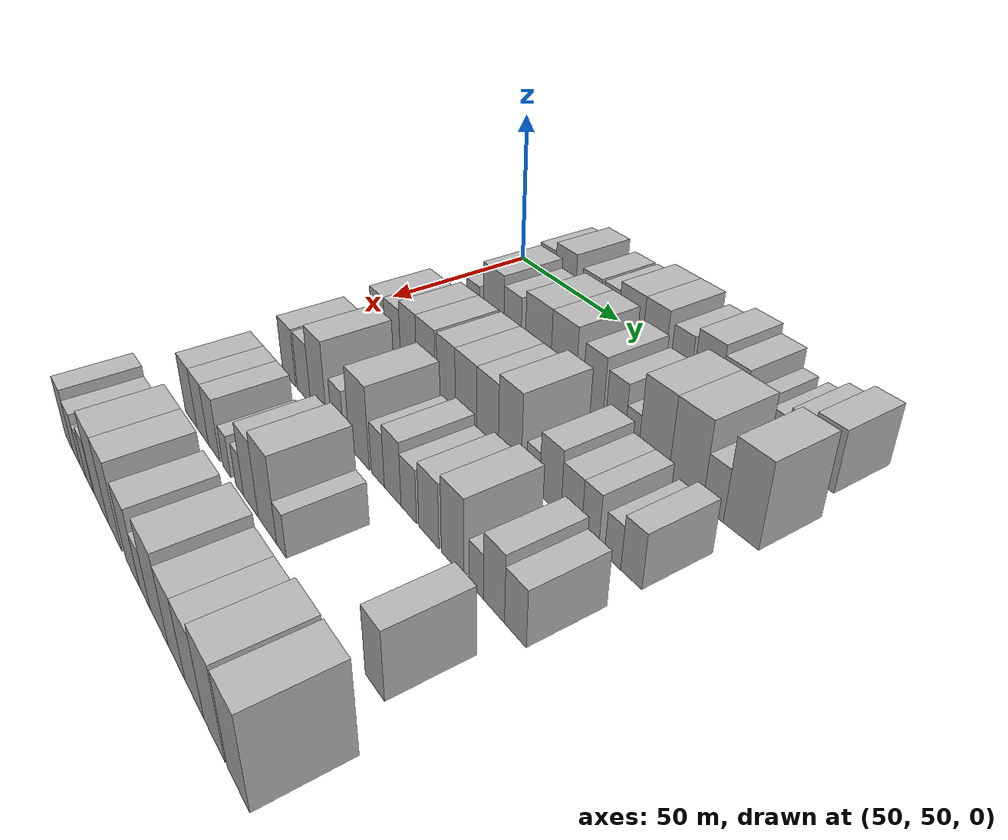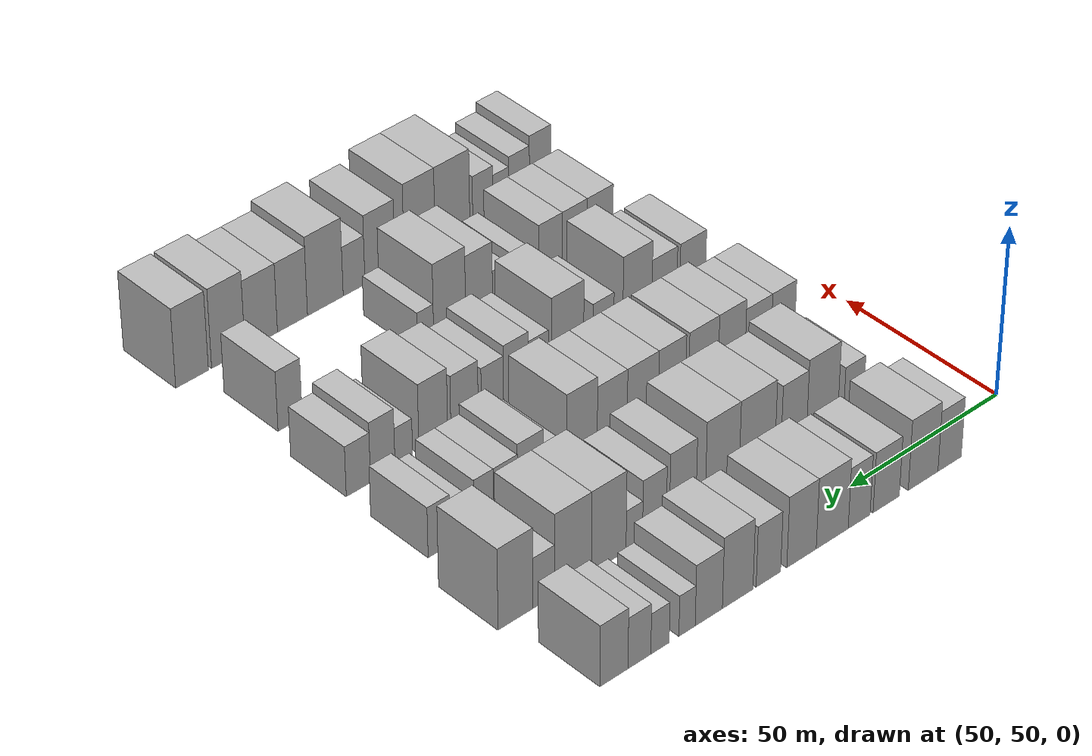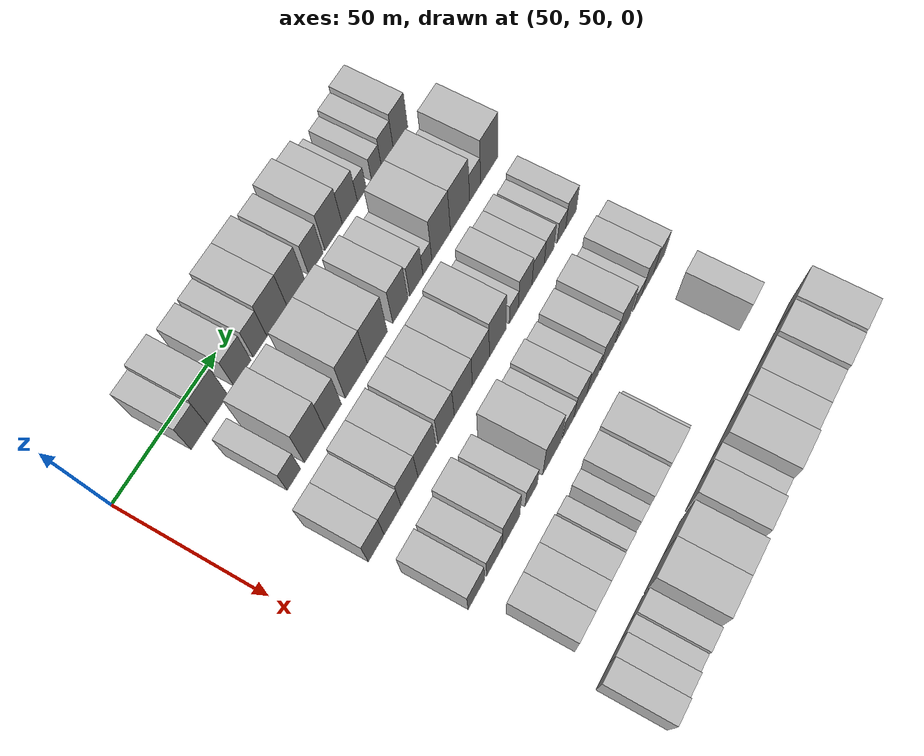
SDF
<sdf version="1.6">
 <world name="default">
  <model name="building_60">
   <static>1</static>
   <pose>50.0000 77.0661 0 0.000000 0.000000 0.000000</pose>
   <link name="link">
    <pose>0 0 9.00 0 0 0</pose>
    <collision name="collision"><geometry><box><size>20.0000 7.9221 18.0000</size></box></geometry></collision>
    <visual name="visual">
     <cast_shadows>0</cast_shadows>
     <geometry><box><size>20.0000 7.9221 18.0000</size></box></geometry>
     <material>
      <script>
       <uri>model://HANNAS_wall/materials/scripts</uri>
       <uri>model://HANNAS_wall/materials/textures</uri>
       <name>vrc/HANNAS_wall</name>
      </script>
     </material>
    </visual>
   </link>
  </model>
  <model name="building_61">
   <static>1</static>
   <pose>50.0000 86.0350 0 0.000000 0.000000 0.000000</pose>
   <link name="link">
    <pose>0 0 10.50 0 0 0</pose>
    <collision name="collision"><geometry><box><size>20.0000 10.0156 21.0000</size></box></geometry></collision>
    <visual name="visual">
     <cast_shadows>0</cast_shadows>
     <geometry><box><size>20.0000 10.0156 21.0000</size></box></geometry>
     <material>
      <script>
       <uri>model://HANNAS_wall/materials/scripts</uri>
       <uri>model://HANNAS_wall/materials/textures</uri>
       <name>vrc/HANNAS_wall</name>
      </script>
     </material>
    </visual>
   </link>
  </model>
  <model name="building_62">
   <static>1</static>
   <pose>50.0000 98.4166 0 0.000000 0.000000 0.000000</pose>
   <link name="link">
    <pose>0 0 9.00 0 0 0</pose>
    <collision name="collision"><geometry><box><size>20.0000 8.7476 18.0000</size></box></geometry></collision>
    <visual name="visual">
     <cast_shadows>0</cast_shadows>
     <geometry><box><size>20.0000 8.7476 18.0000</size></box></geometry>
     <material>
      <script>
       <uri>model://HANNAS_wall/materials/scripts</uri>
       <uri>model://HANNAS_wall/materials/textures</uri>
       <name>vrc/HANNAS_wall</name>
      </script>
     </material>
    </visual>
   </link>
  </model>
  <model name="building_63">
   <static>1</static>
   <pose>50.0000 107.3916 0 0.000000 0.000000 0.000000</pose>
   <link name="link">
    <pose>0 0 9.00 0 0 0</pose>
    <collision name="collision"><geometry><box><size>20.0000 7.2025 18.0000</size></box></geometry></collision>
    <visual name="visual">
     <cast_shadows>0</cast_shadows>
     <geometry><box><size>20.0000 7.2025 18.0000</size></box></geometry>
     <material>
      <script>
       <uri>model://HANNAS_wall/materials/scripts</uri>
       <uri>model://HANNAS_wall/materials/textures</uri>
       <name>vrc/HANNAS_wall</name>
      </script>
     </material>
    </visual>
   </link>
  </model>
  <model name="building_64">
   <static>1</static>
   <pose>50.0000 116.2311 0 0.000000 0.000000 0.000000</pose>
   <link name="link">
    <pose>0 0 10.50 0 0 0</pose>
    <collision name="collision"><geometry><box><size>20.0000 10.4764 21.0000</size></box></geometry></collision>
    <visual name="visual">
     <cast_shadows>0</cast_shadows>
     <geometry><box><size>20.0000 10.4764 21.0000</size></box></geometry>
     <material>
      <script>
       <uri>model://HANNAS_wall/materials/scripts</uri>
       <uri>model://HANNAS_wall/materials/textures</uri>
       <name>vrc/HANNAS_wall</name>
      </script>
     </material>
    </visual>
   </link>
  </model>
  <model name="building_65">
   <static>1</static>
   <pose>50.0000 126.2263 0 0.000000 0.000000 0.000000</pose>
   <link name="link">
    <pose>0 0 10.50 0 0 0</pose>
    <collision name="collision"><geometry><box><size>20.0000 9.5140 21.0000</size></box></geometry></collision>
    <visual name="visual">
     <cast_shadows>0</cast_shadows>
     <geometry><box><size>20.0000 9.5140 21.0000</size></box></geometry>
     <material>
      <script>
       <uri>model://HANNAS_wall/materials/scripts</uri>
       <uri>model://HANNAS_wall/materials/textures</uri>
       <name>vrc/HANNAS_wall</name>
      </script>
     </material>
    </visual>
   </link>
  </model>
  <model name="building_66">
   <static>1</static>
   <pose>50.0000 136.9026 0 0.000000 0.000000 0.000000</pose>
   <link name="link">
    <pose>0 0 9.00 0 0 0</pose>
    <collision name="collision"><geometry><box><size>20.0000 7.8386 18.0000</size></box></geometry></collision>
    <visual name="visual">
     <cast_shadows>0</cast_shadows>
     <geometry><box><size>20.0000 7.8386 18.0000</size></box></geometry>
     <material>
      <script>
       <uri>model://HANNAS_wall/materials/scripts</uri>
       <uri>model://HANNAS_wall/materials/textures</uri>
       <name>vrc/HANNAS_wall</name>
      </script>
     </material>
    </visual>
   </link>
  </model>
  <model name="building_67">
   <static>1</static>
   <pose>50.0000 146.6711 0 0.000000 0.000000 0.000000</pose>
   <link name="link">
    <pose>0 0 10.50 0 0 0</pose>
    <collision name="collision"><geometry><box><size>20.0000 9.6983 21.0000</size></box></geometry></collision>
    <visual name="visual">
     <cast_shadows>0</cast_shadows>
     <geometry><box><size>20.0000 9.6983 21.0000</size></box></geometry>
     <material>
      <script>
       <uri>model://HANNAS_wall/materials/scripts</uri>
       <uri>model://HANNAS_wall/materials/textures</uri>
       <name>vrc/HANNAS_wall</name>
      </script>
     </material>
    </visual>
   </link>
  </model>
  <model name="building_68">
   <static>1</static>
   <pose>50.0000 155.7852 0 0.000000 0.000000 0.000000</pose>
   <link name="link">
    <pose>0 0 9.00 0 0 0</pose>
    <collision name="collision"><geometry><box><size>20.0000 8.5299 18.0000</size></box></geometry></collision>
    <visual name="visual">
     <cast_shadows>0</cast_shadows>
     <geometry><box><size>20.0000 8.5299 18.0000</size></box></geometry>
     <material>
      <script>
       <uri>model://HANNAS_wall/materials/scripts</uri>
       <uri>model://HANNAS_wall/materials/textures</uri>
       <name>vrc/HANNAS_wall</name>
      </script>
     </material>
    </visual>
   </link>
  </model>
  <model name="building_69">
   <static>1</static>
   <pose>50.0000 162.5838 0 0.000000 0.000000 0.000000</pose>
   <link name="link">
    <pose>0 0 6.00 0 0 0</pose>
    <collision name="collision"><geometry><box><size>20.0000 5.0674 12.0000</size></box></geometry></collision>
    <visual name="visual">
     <cast_shadows>0</cast_shadows>
     <geometry><box><size>20.0000 5.0674 12.0000</size></box></geometry>
     <material>
      <script>
       <uri>model://HANNAS_wall/materials/scripts</uri>
       <uri>model://HANNAS_wall/materials/textures</uri>
       <name>vrc/HANNAS_wall</name>
      </script>
     </material>
    </visual>
   </link>
  </model>
  <model name="building_70">
   <static>1</static>
   <pose>50.0000 170.9554 0 0.000000 0.000000 0.000000</pose>
   <link name="link">
    <pose>0 0 6.00 0 0 0</pose>
    <collision name="collision"><geometry><box><size>20.0000 5.6758 12.0000</size></box></geometry></collision>
    <visual name="visual">
     <cast_shadows>0</cast_shadows>
     <geometry><box><size>20.0000 5.6758 12.0000</size></box></geometry>
     <material>
      <script>
       <uri>model://HANNAS_wall/materials/scripts</uri>
       <uri>model://HANNAS_wall/materials/textures</uri>
       <name>vrc/HANNAS_wall</name>
      </script>
     </material>
    </visual>
   </link>
  </model>
  <model name="building_71">
   <static>1</static>
   <pose>50.0000 177.2953 0 0.000000 0.000000 0.000000</pose>
   <link name="link">
    <pose>0 0 7.50 0 0 0</pose>
    <collision name="collision"><geometry><box><size>20.0000 7.0041 15.0000</size></box></geometry></collision>
    <visual name="visual">
     <cast_shadows>0</cast_shadows>
     <geometry><box><size>20.0000 7.0041 15.0000</size></box></geometry>
     <material>
      <script>
       <uri>model://HANNAS_wall/materials/scripts</uri>
       <uri>model://HANNAS_wall/materials/textures</uri>
       <name>vrc/HANNAS_wall</name>
      </script>
     </material>
    </visual>
   </link>
  </model>
  <model name="building_72">
   <static>1</static>
   <pose>50.0000 185.0707 0 0.000000 0.000000 0.000000</pose>
   <link name="link">
    <pose>0 0 9.00 0 0 0</pose>
    <collision name="collision"><geometry><box><size>20.0000 8.5465 18.0000</size></box></geometry></collision>
    <visual name="visual">
     <cast_shadows>0</cast_shadows>
     <geometry><box><size>20.0000 8.5465 18.0000</size></box></geometry>
     <material>
      <script>
       <uri>model://HANNAS_wall/materials/scripts</uri>
       <uri>model://HANNAS_wall/materials/textures</uri>
       <name>vrc/HANNAS_wall</name>
      </script>
     </material>
    </visual>
   </link>
  </model>
  <model name="building_172">
   <static>1</static>
   <pose>79.0000 79.4895 0 0.000000 0.000000 0.000000</pose>
   <link name="link">
    <pose>0 0 7.50 0 0 0</pose>
    <collision name="collision"><geometry><box><size>20.0000 6.7395 15.0000</size></box></geometry></collision>
    <visual name="visual">
     <cast_shadows>0</cast_shadows>
     <geometry><box><size>20.0000 6.7395 15.0000</size></box></geometry>
     <material>
      <script>
       <uri>model://HANNAS_wall/materials/scripts</uri>
       <uri>model://HANNAS_wall/materials/textures</uri>
       <name>vrc/HANNAS_wall</name>
      </script>
     </material>
    </visual>
   </link>
  </model>
  <model name="building_173">
   <static>1</static>
   <pose>79.0000 90.1272 0 0.000000 0.000000 0.000000</pose>
   <link name="link">
    <pose>0 0 12.00 0 0 0</pose>
    <collision name="collision"><geometry><box><size>20.0000 10.5358 24.0000</size></box></geometry></collision>
    <visual name="visual">
     <cast_shadows>0</cast_shadows>
     <geometry><box><size>20.0000 10.5358 24.0000</size></box></geometry>
     <material>
      <script>
       <uri>model://HANNAS_wall/materials/scripts</uri>
       <uri>model://HANNAS_wall/materials/textures</uri>
       <name>vrc/HANNAS_wall</name>
      </script>
     </material>
    </visual>
   </link>
  </model>
  <model name="building_174">
   <static>1</static>
   <pose>79.0000 99.6537 0 0.000000 0.000000 0.000000</pose>
   <link name="link">
    <pose>0 0 10.50 0 0 0</pose>
    <collision name="collision"><geometry><box><size>20.0000 8.5172 21.0000</size></box></geometry></collision>
    <visual name="visual">
     <cast_shadows>0</cast_shadows>
     <geometry><box><size>20.0000 8.5172 21.0000</size></box></geometry>
     <material>
      <script>
       <uri>model://HANNAS_wall/materials/scripts</uri>
       <uri>model://HANNAS_wall/materials/textures</uri>
       <name>vrc/HANNAS_wall</name>
      </script>
     </material>
    </visual>
   </link>
  </model>
  <model name="building_175">
   <static>1</static>
   <pose>79.0000 111.7917 0 0.000000 0.000000 0.000000</pose>
   <link name="link">
    <pose>0 0 12.00 0 0 0</pose>
    <collision name="collision"><geometry><box><size>20.0000 11.7587 24.0000</size></box></geometry></collision>
    <visual name="visual">
     <cast_shadows>0</cast_shadows>
     <geometry><box><size>20.0000 11.7587 24.0000</size></box></geometry>
     <material>
      <script>
       <uri>model://HANNAS_wall/materials/scripts</uri>
       <uri>model://HANNAS_wall/materials/textures</uri>
       <name>vrc/HANNAS_wall</name>
      </script>
     </material>
    </visual>
   </link>
  </model>
  <model name="building_176">
   <static>1</static>
   <pose>79.0000 123.1472 0 0.000000 0.000000 0.000000</pose>
   <link name="link">
    <pose>0 0 12.00 0 0 0</pose>
    <collision name="collision"><geometry><box><size>20.0000 10.9523 24.0000</size></box></geometry></collision>
    <visual name="visual">
     <cast_shadows>0</cast_shadows>
     <geometry><box><size>20.0000 10.9523 24.0000</size></box></geometry>
     <material>
      <script>
       <uri>model://HANNAS_wall/materials/scripts</uri>
       <uri>model://HANNAS_wall/materials/textures</uri>
       <name>vrc/HANNAS_wall</name>
      </script>
     </material>
    </visual>
   </link>
  </model>
  <model name="building_177">
   <static>1</static>
   <pose>79.0000 135.8854 0 0.000000 0.000000 0.000000</pose>
   <link name="link">
    <pose>0 0 10.50 0 0 0</pose>
    <collision name="collision"><geometry><box><size>20.0000 8.5241 21.0000</size></box></geometry></collision>
    <visual name="visual">
     <cast_shadows>0</cast_shadows>
     <geometry><box><size>20.0000 8.5241 21.0000</size></box></geometry>
     <material>
      <script>
       <uri>model://HANNAS_wall/materials/scripts</uri>
       <uri>model://HANNAS_wall/materials/textures</uri>
       <name>vrc/HANNAS_wall</name>
      </script>
     </material>
    </visual>
   </link>
  </model>
  <model name="building_178">
   <static>1</static>
   <pose>79.0000 144.9163 0 0.000000 0.000000 0.000000</pose>
   <link name="link">
    <pose>0 0 9.00 0 0 0</pose>
    <collision name="collision"><geometry><box><size>20.0000 7.5376 18.0000</size></box></geometry></collision>
    <visual name="visual">
     <cast_shadows>0</cast_shadows>
     <geometry><box><size>20.0000 7.5376 18.0000</size></box></geometry>
     <material>
      <script>
       <uri>model://HANNAS_wall/materials/scripts</uri>
       <uri>model://HANNAS_wall/materials/textures</uri>
       <name>vrc/HANNAS_wall</name>
      </script>
     </material>
    </visual>
   </link>
  </model>
  <model name="building_179">
   <static>1</static>
   <pose>79.0000 151.2828 0 0.000000 0.000000 0.000000</pose>
   <link name="link">
    <pose>0 0 6.00 0 0 0</pose>
    <collision name="collision"><geometry><box><size>20.0000 5.1955 12.0000</size></box></geometry></collision>
    <visual name="visual">
     <cast_shadows>0</cast_shadows>
     <geometry><box><size>20.0000 5.1955 12.0000</size></box></geometry>
     <material>
      <script>
       <uri>model://HANNAS_wall/materials/scripts</uri>
       <uri>model://HANNAS_wall/materials/textures</uri>
       <name>vrc/HANNAS_wall</name>
      </script>
     </material>
    </visual>
   </link>
  </model>
  <model name="building_180">
   <static>1</static>
   <pose>79.0000 159.2935 0 0.000000 0.000000 0.000000</pose>
   <link name="link">
    <pose>0 0 12.00 0 0 0</pose>
    <collision name="collision"><geometry><box><size>20.0000 10.8259 24.0000</size></box></geometry></collision>
    <visual name="visual">
     <cast_shadows>0</cast_shadows>
     <geometry><box><size>20.0000 10.8259 24.0000</size></box></geometry>
     <material>
      <script>
       <uri>model://HANNAS_wall/materials/scripts</uri>
       <uri>model://HANNAS_wall/materials/textures</uri>
       <name>vrc/HANNAS_wall</name>
      </script>
     </material>
    </visual>
   </link>
  </model>
  <model name="building_181">
   <static>1</static>
   <pose>79.0000 170.4123 0 0.000000 0.000000 0.000000</pose>
   <link name="link">
    <pose>0 0 12.00 0 0 0</pose>
    <collision name="collision"><geometry><box><size>20.0000 11.4117 24.0000</size></box></geometry></collision>
    <visual name="visual">
     <cast_shadows>0</cast_shadows>
     <geometry><box><size>20.0000 11.4117 24.0000</size></box></geometry>
     <material>
      <script>
       <uri>model://HANNAS_wall/materials/scripts</uri>
       <uri>model://HANNAS_wall/materials/textures</uri>
       <name>vrc/HANNAS_wall</name>
      </script>
     </material>
    </visual>
   </link>
  </model>
  <model name="building_182">
   <static>1</static>
   <pose>79.0000 179.4319 0 0.000000 0.000000 0.000000</pose>
   <link name="link">
    <pose>0 0 7.50 0 0 0</pose>
    <collision name="collision"><geometry><box><size>20.0000 6.6274 15.0000</size></box></geometry></collision>
    <visual name="visual">
     <cast_shadows>0</cast_shadows>
     <geometry><box><size>20.0000 6.6274 15.0000</size></box></geometry>
     <material>
      <script>
       <uri>model://HANNAS_wall/materials/scripts</uri>
       <uri>model://HANNAS_wall/materials/textures</uri>
       <name>vrc/HANNAS_wall</name>
      </script>
     </material>
    </visual>
   </link>
  </model>
  <model name="building_183">
   <static>1</static>
   <pose>79.0000 188.0603 0 0.000000 0.000000 0.000000</pose>
   <link name="link">
    <pose>0 0 12.00 0 0 0</pose>
    <collision name="collision"><geometry><box><size>20.0000 10.6296 24.0000</size></box></geometry></collision>
    <visual name="visual">
     <cast_shadows>0</cast_shadows>
     <geometry><box><size>20.0000 10.6296 24.0000</size></box></geometry>
     <material>
      <script>
       <uri>model://HANNAS_wall/materials/scripts</uri>
       <uri>model://HANNAS_wall/materials/textures</uri>
       <name>vrc/HANNAS_wall</name>
      </script>
     </material>
    </visual>
   </link>
  </model>
  <model name="building_285">
   <static>1</static>
   <pose>108.0000 74.2143 0 0.000000 0.000000 0.000000</pose>
   <link name="link">
    <pose>0 0 9.00 0 0 0</pose>
    <collision name="collision"><geometry><box><size>20.0000 8.1127 18.0000</size></box></geometry></collision>
    <visual name="visual">
     <cast_shadows>0</cast_shadows>
     <geometry><box><size>20.0000 8.1127 18.0000</size></box></geometry>
     <material>
      <script>
       <uri>model://HANNAS_wall/materials/scripts</uri>
       <uri>model://HANNAS_wall/materials/textures</uri>
       <name>vrc/HANNAS_wall</name>
      </script>
     </material>
    </visual>
   </link>
  </model>
  <model name="building_286">
   <static>1</static>
   <pose>108.0000 82.6701 0 0.000000 0.000000 0.000000</pose>
   <link name="link">
    <pose>0 0 9.00 0 0 0</pose>
    <collision name="collision"><geometry><box><size>20.0000 8.7988 18.0000</size></box></geometry></collision>
    <visual name="visual">
     <cast_shadows>0</cast_shadows>
     <geometry><box><size>20.0000 8.7988 18.0000</size></box></geometry>
     <material>
      <script>
       <uri>model://HANNAS_wall/materials/scripts</uri>
       <uri>model://HANNAS_wall/materials/textures</uri>
       <name>vrc/HANNAS_wall</name>
      </script>
     </material>
    </visual>
   </link>
  </model>
  <model name="building_287">
   <static>1</static>
   <pose>108.0000 91.5873 0 0.000000 0.000000 0.000000</pose>
   <link name="link">
    <pose>0 0 10.50 0 0 0</pose>
    <collision name="collision"><geometry><box><size>20.0000 9.0356 21.0000</size></box></geometry></collision>
    <visual name="visual">
     <cast_shadows>0</cast_shadows>
     <geometry><box><size>20.0000 9.0356 21.0000</size></box></geometry>
     <material>
      <script>
       <uri>model://HANNAS_wall/materials/scripts</uri>
       <uri>model://HANNAS_wall/materials/textures</uri>
       <name>vrc/HANNAS_wall</name>
      </script>
     </material>
    </visual>
   </link>
  </model>
  <model name="building_288">
   <static>1</static>
   <pose>108.0000 101.0164 0 0.000000 0.000000 0.000000</pose>
   <link name="link">
    <pose>0 0 10.50 0 0 0</pose>
    <collision name="collision"><geometry><box><size>20.0000 9.8226 21.0000</size></box></geometry></collision>
    <visual name="visual">
     <cast_shadows>0</cast_shadows>
     <geometry><box><size>20.0000 9.8226 21.0000</size></box></geometry>
     <material>
      <script>
       <uri>model://HANNAS_wall/materials/scripts</uri>
       <uri>model://HANNAS_wall/materials/textures</uri>
       <name>vrc/HANNAS_wall</name>
      </script>
     </material>
    </visual>
   </link>
  </model>
  <model name="building_289">
   <static>1</static>
   <pose>108.0000 111.4080 0 0.000000 0.000000 0.000000</pose>
   <link name="link">
    <pose>0 0 10.50 0 0 0</pose>
    <collision name="collision"><geometry><box><size>20.0000 8.9605 21.0000</size></box></geometry></collision>
    <visual name="visual">
     <cast_shadows>0</cast_shadows>
     <geometry><box><size>20.0000 8.9605 21.0000</size></box></geometry>
     <material>
      <script>
       <uri>model://HANNAS_wall/materials/scripts</uri>
       <uri>model://HANNAS_wall/materials/textures</uri>
       <name>vrc/HANNAS_wall</name>
      </script>
     </material>
    </visual>
   </link>
  </model>
  <model name="building_290">
   <static>1</static>
   <pose>108.0000 120.9614 0 0.000000 0.000000 0.000000</pose>
   <link name="link">
    <pose>0 0 10.50 0 0 0</pose>
    <collision name="collision"><geometry><box><size>20.0000 10.1464 21.0000</size></box></geometry></collision>
    <visual name="visual">
     <cast_shadows>0</cast_shadows>
     <geometry><box><size>20.0000 10.1464 21.0000</size></box></geometry>
     <material>
      <script>
       <uri>model://HANNAS_wall/materials/scripts</uri>
       <uri>model://HANNAS_wall/materials/textures</uri>
       <name>vrc/HANNAS_wall</name>
      </script>
     </material>
    </visual>
   </link>
  </model>
  <model name="building_291">
   <static>1</static>
   <pose>108.0000 130.8643 0 0.000000 0.000000 0.000000</pose>
   <link name="link">
    <pose>0 0 10.50 0 0 0</pose>
    <collision name="collision"><geometry><box><size>20.0000 9.6594 21.0000</size></box></geometry></collision>
    <visual name="visual">
     <cast_shadows>0</cast_shadows>
     <geometry><box><size>20.0000 9.6594 21.0000</size></box></geometry>
     <material>
      <script>
       <uri>model://HANNAS_wall/materials/scripts</uri>
       <uri>model://HANNAS_wall/materials/textures</uri>
       <name>vrc/HANNAS_wall</name>
      </script>
     </material>
    </visual>
   </link>
  </model>
  <model name="building_292">
   <static>1</static>
   <pose>108.0000 140.5362 0 0.000000 0.000000 0.000000</pose>
   <link name="link">
    <pose>0 0 12.00 0 0 0</pose>
    <collision name="collision"><geometry><box><size>20.0000 9.6843 24.0000</size></box></geometry></collision>
    <visual name="visual">
     <cast_shadows>0</cast_shadows>
     <geometry><box><size>20.0000 9.6843 24.0000</size></box></geometry>
     <material>
      <script>
       <uri>model://HANNAS_wall/materials/scripts</uri>
       <uri>model://HANNAS_wall/materials/textures</uri>
       <name>vrc/HANNAS_wall</name>
      </script>
     </material>
    </visual>
   </link>
  </model>
  <model name="building_293">
   <static>1</static>
   <pose>108.0000 150.0573 0 0.000000 0.000000 0.000000</pose>
   <link name="link">
    <pose>0 0 6.00 0 0 0</pose>
    <collision name="collision"><geometry><box><size>20.0000 5.3579 12.0000</size></box></geometry></collision>
    <visual name="visual">
     <cast_shadows>0</cast_shadows>
     <geometry><box><size>20.0000 5.3579 12.0000</size></box></geometry>
     <material>
      <script>
       <uri>model://HANNAS_wall/materials/scripts</uri>
       <uri>model://HANNAS_wall/materials/textures</uri>
       <name>vrc/HANNAS_wall</name>
      </script>
     </material>
    </visual>
   </link>
  </model>
  <model name="building_294">
   <static>1</static>
   <pose>108.0000 156.8448 0 0.000000 0.000000 0.000000</pose>
   <link name="link">
    <pose>0 0 9.00 0 0 0</pose>
    <collision name="collision"><geometry><box><size>20.0000 8.2171 18.0000</size></box></geometry></collision>
    <visual name="visual">
     <cast_shadows>0</cast_shadows>
     <geometry><box><size>20.0000 8.2171 18.0000</size></box></geometry>
     <material>
      <script>
       <uri>model://HANNAS_wall/materials/scripts</uri>
       <uri>model://HANNAS_wall/materials/textures</uri>
       <name>vrc/HANNAS_wall</name>
      </script>
     </material>
    </visual>
   </link>
  </model>
  <model name="building_295">
   <static>1</static>
   <pose>108.0000 164.7016 0 0.000000 0.000000 0.000000</pose>
   <link name="link">
    <pose>0 0 7.50 0 0 0</pose>
    <collision name="collision"><geometry><box><size>20.0000 7.4965 15.0000</size></box></geometry></collision>
    <visual name="visual">
     <cast_shadows>0</cast_shadows>
     <geometry><box><size>20.0000 7.4965 15.0000</size></box></geometry>
     <material>
      <script>
       <uri>model://HANNAS_wall/materials/scripts</uri>
       <uri>model://HANNAS_wall/materials/textures</uri>
       <name>vrc/HANNAS_wall</name>
      </script>
     </material>
    </visual>
   </link>
  </model>
  <model name="building_296">
   <static>1</static>
   <pose>108.0000 171.4627 0 0.000000 0.000000 0.000000</pose>
   <link name="link">
    <pose>0 0 7.50 0 0 0</pose>
    <collision name="collision"><geometry><box><size>20.0000 6.0258 15.0000</size></box></geometry></collision>
    <visual name="visual">
     <cast_shadows>0</cast_shadows>
     <geometry><box><size>20.0000 6.0258 15.0000</size></box></geometry>
     <material>
      <script>
       <uri>model://HANNAS_wall/materials/scripts</uri>
       <uri>model://HANNAS_wall/materials/textures</uri>
       <name>vrc/HANNAS_wall</name>
      </script>
     </material>
    </visual>
   </link>
  </model>
  <model name="building_297">
   <static>1</static>
   <pose>108.0000 179.1649 0 0.000000 0.000000 0.000000</pose>
   <link name="link">
    <pose>0 0 6.00 0 0 0</pose>
    <collision name="collision"><geometry><box><size>20.0000 5.3787 12.0000</size></box></geometry></collision>
    <visual name="visual">
     <cast_shadows>0</cast_shadows>
     <geometry><box><size>20.0000 5.3787 12.0000</size></box></geometry>
     <material>
      <script>
       <uri>model://HANNAS_wall/materials/scripts</uri>
       <uri>model://HANNAS_wall/materials/textures</uri>
       <name>vrc/HANNAS_wall</name>
      </script>
     </material>
    </visual>
   </link>
  </model>
  <model name="building_298">
   <static>1</static>
   <pose>108.0000 185.2179 0 0.000000 0.000000 0.000000</pose>
   <link name="link">
    <pose>0 0 7.50 0 0 0</pose>
    <collision name="collision"><geometry><box><size>20.0000 6.7272 15.0000</size></box></geometry></collision>
    <visual name="visual">
     <cast_shadows>0</cast_shadows>
     <geometry><box><size>20.0000 6.7272 15.0000</size></box></geometry>
     <material>
      <script>
       <uri>model://HANNAS_wall/materials/scripts</uri>
       <uri>model://HANNAS_wall/materials/textures</uri>
       <name>vrc/HANNAS_wall</name>
      </script>
     </material>
    </visual>
   </link>
  </model>
  <model name="building_396">
   <static>1</static>
   <pose>137.0000 76.3976 0 0.000000 0.000000 0.000000</pose>
   <link name="link">
    <pose>0 0 9.00 0 0 0</pose>
    <collision name="collision"><geometry><box><size>20.0000 8.7721 18.0000</size></box></geometry></collision>
    <visual name="visual">
     <cast_shadows>0</cast_shadows>
     <geometry><box><size>20.0000 8.7721 18.0000</size></box></geometry>
     <material>
      <script>
       <uri>model://HANNAS_wall/materials/scripts</uri>
       <uri>model://HANNAS_wall/materials/textures</uri>
       <name>vrc/HANNAS_wall</name>
      </script>
     </material>
    </visual>
   </link>
  </model>
  <model name="building_397">
   <static>1</static>
   <pose>137.0000 86.0030 0 0.000000 0.000000 0.000000</pose>
   <link name="link">
    <pose>0 0 9.00 0 0 0</pose>
    <collision name="collision"><geometry><box><size>20.0000 8.4387 18.0000</size></box></geometry></collision>
    <visual name="visual">
     <cast_shadows>0</cast_shadows>
     <geometry><box><size>20.0000 8.4387 18.0000</size></box></geometry>
     <material>
      <script>
       <uri>model://HANNAS_wall/materials/scripts</uri>
       <uri>model://HANNAS_wall/materials/textures</uri>
       <name>vrc/HANNAS_wall</name>
      </script>
     </material>
    </visual>
   </link>
  </model>
  <model name="building_398">
   <static>1</static>
   <pose>137.0000 95.0915 0 0.000000 0.000000 0.000000</pose>
   <link name="link">
    <pose>0 0 12.00 0 0 0</pose>
    <collision name="collision"><geometry><box><size>20.0000 9.7384 24.0000</size></box></geometry></collision>
    <visual name="visual">
     <cast_shadows>0</cast_shadows>
     <geometry><box><size>20.0000 9.7384 24.0000</size></box></geometry>
     <material>
      <script>
       <uri>model://HANNAS_wall/materials/scripts</uri>
       <uri>model://HANNAS_wall/materials/textures</uri>
       <name>vrc/HANNAS_wall</name>
      </script>
     </material>
    </visual>
   </link>
  </model>
  <model name="building_399">
   <static>1</static>
   <pose>137.0000 106.4429 0 0.000000 0.000000 0.000000</pose>
   <link name="link">
    <pose>0 0 7.50 0 0 0</pose>
    <collision name="collision"><geometry><box><size>20.0000 6.9644 15.0000</size></box></geometry></collision>
    <visual name="visual">
     <cast_shadows>0</cast_shadows>
     <geometry><box><size>20.0000 6.9644 15.0000</size></box></geometry>
     <material>
      <script>
       <uri>model://HANNAS_wall/materials/scripts</uri>
       <uri>model://HANNAS_wall/materials/textures</uri>
       <name>vrc/HANNAS_wall</name>
      </script>
     </material>
    </visual>
   </link>
  </model>
  <model name="building_400">
   <static>1</static>
   <pose>137.0000 118.1980 0 0.000000 0.000000 0.000000</pose>
   <link name="link">
    <pose>0 0 12.00 0 0 0</pose>
    <collision name="collision"><geometry><box><size>20.0000 10.5457 24.0000</size></box></geometry></collision>
    <visual name="visual">
     <cast_shadows>0</cast_shadows>
     <geometry><box><size>20.0000 10.5457 24.0000</size></box></geometry>
     <material>
      <script>
       <uri>model://HANNAS_wall/materials/scripts</uri>
       <uri>model://HANNAS_wall/materials/textures</uri>
       <name>vrc/HANNAS_wall</name>
      </script>
     </material>
    </visual>
   </link>
  </model>
  <model name="building_401">
   <static>1</static>
   <pose>137.0000 127.7268 0 0.000000 0.000000 0.000000</pose>
   <link name="link">
    <pose>0 0 7.50 0 0 0</pose>
    <collision name="collision"><geometry><box><size>20.0000 6.5120 15.0000</size></box></geometry></collision>
    <visual name="visual">
     <cast_shadows>0</cast_shadows>
     <geometry><box><size>20.0000 6.5120 15.0000</size></box></geometry>
     <material>
      <script>
       <uri>model://HANNAS_wall/materials/scripts</uri>
       <uri>model://HANNAS_wall/materials/textures</uri>
       <name>vrc/HANNAS_wall</name>
      </script>
     </material>
    </visual>
   </link>
  </model>
  <model name="building_402">
   <static>1</static>
   <pose>137.0000 134.9718 0 0.000000 0.000000 0.000000</pose>
   <link name="link">
    <pose>0 0 9.00 0 0 0</pose>
    <collision name="collision"><geometry><box><size>20.0000 7.9781 18.0000</size></box></geometry></collision>
    <visual name="visual">
     <cast_shadows>0</cast_shadows>
     <geometry><box><size>20.0000 7.9781 18.0000</size></box></geometry>
     <material>
      <script>
       <uri>model://HANNAS_wall/materials/scripts</uri>
       <uri>model://HANNAS_wall/materials/textures</uri>
       <name>vrc/HANNAS_wall</name>
      </script>
     </material>
    </visual>
   </link>
  </model>
  <model name="building_403">
   <static>1</static>
   <pose>137.0000 142.5085 0 0.000000 0.000000 0.000000</pose>
   <link name="link">
    <pose>0 0 7.50 0 0 0</pose>
    <collision name="collision"><geometry><box><size>20.0000 7.0953 15.0000</size></box></geometry></collision>
    <visual name="visual">
     <cast_shadows>0</cast_shadows>
     <geometry><box><size>20.0000 7.0953 15.0000</size></box></geometry>
     <material>
      <script>
       <uri>model://HANNAS_wall/materials/scripts</uri>
       <uri>model://HANNAS_wall/materials/textures</uri>
       <name>vrc/HANNAS_wall</name>
      </script>
     </material>
    </visual>
   </link>
  </model>
  <model name="building_404">
   <static>1</static>
   <pose>137.0000 151.3928 0 0.000000 0.000000 0.000000</pose>
   <link name="link">
    <pose>0 0 9.00 0 0 0</pose>
    <collision name="collision"><geometry><box><size>20.0000 8.6733 18.0000</size></box></geometry></collision>
    <visual name="visual">
     <cast_shadows>0</cast_shadows>
     <geometry><box><size>20.0000 8.6733 18.0000</size></box></geometry>
     <material>
      <script>
       <uri>model://HANNAS_wall/materials/scripts</uri>
       <uri>model://HANNAS_wall/materials/textures</uri>
       <name>vrc/HANNAS_wall</name>
      </script>
     </material>
    </visual>
   </link>
  </model>
  <model name="building_405">
   <static>1</static>
   <pose>137.0000 161.2416 0 0.000000 0.000000 0.000000</pose>
   <link name="link">
    <pose>0 0 10.50 0 0 0</pose>
    <collision name="collision"><geometry><box><size>20.0000 9.0244 21.0000</size></box></geometry></collision>
    <visual name="visual">
     <cast_shadows>0</cast_shadows>
     <geometry><box><size>20.0000 9.0244 21.0000</size></box></geometry>
     <material>
      <script>
       <uri>model://HANNAS_wall/materials/scripts</uri>
       <uri>model://HANNAS_wall/materials/textures</uri>
       <name>vrc/HANNAS_wall</name>
      </script>
     </material>
    </visual>
   </link>
  </model>
  <model name="building_406">
   <static>1</static>
   <pose>137.0000 170.4910 0 0.000000 0.000000 0.000000</pose>
   <link name="link">
    <pose>0 0 6.00 0 0 0</pose>
    <collision name="collision"><geometry><box><size>20.0000 5.4743 12.0000</size></box></geometry></collision>
    <visual name="visual">
     <cast_shadows>0</cast_shadows>
     <geometry><box><size>20.0000 5.4743 12.0000</size></box></geometry>
     <material>
      <script>
       <uri>model://HANNAS_wall/materials/scripts</uri>
       <uri>model://HANNAS_wall/materials/textures</uri>
       <name>vrc/HANNAS_wall</name>
      </script>
     </material>
    </visual>
   </link>
  </model>
  <model name="building_407">
   <static>1</static>
   <pose>137.0000 177.0162 0 0.000000 0.000000 0.000000</pose>
   <link name="link">
    <pose>0 0 9.00 0 0 0</pose>
    <collision name="collision"><geometry><box><size>20.0000 7.5762 18.0000</size></box></geometry></collision>
    <visual name="visual">
     <cast_shadows>0</cast_shadows>
     <geometry><box><size>20.0000 7.5762 18.0000</size></box></geometry>
     <material>
      <script>
       <uri>model://HANNAS_wall/materials/scripts</uri>
       <uri>model://HANNAS_wall/materials/textures</uri>
       <name>vrc/HANNAS_wall</name>
      </script>
     </material>
    </visual>
   </link>
  </model>
  <model name="building_408">
   <static>1</static>
   <pose>137.0000 184.5310 0 0.000000 0.000000 0.000000</pose>
   <link name="link">
    <pose>0 0 7.50 0 0 0</pose>
    <collision name="collision"><geometry><box><size>20.0000 7.4533 15.0000</size></box></geometry></collision>
    <visual name="visual">
     <cast_shadows>0</cast_shadows>
     <geometry><box><size>20.0000 7.4533 15.0000</size></box></geometry>
     <material>
      <script>
       <uri>model://HANNAS_wall/materials/scripts</uri>
       <uri>model://HANNAS_wall/materials/textures</uri>
       <name>vrc/HANNAS_wall</name>
      </script>
     </material>
    </visual>
   </link>
  </model>
  <model name="building_513">
   <static>1</static>
   <pose>166.0000 80.2275 0 0.000000 0.000000 0.000000</pose>
   <link name="link">
    <pose>0 0 9.00 0 0 0</pose>
    <collision name="collision"><geometry><box><size>20.0000 8.7431 18.0000</size></box></geometry></collision>
    <visual name="visual">
     <cast_shadows>0</cast_shadows>
     <geometry><box><size>20.0000 8.7431 18.0000</size></box></geometry>
     <material>
      <script>
       <uri>model://HANNAS_wall/materials/scripts</uri>
       <uri>model://HANNAS_wall/materials/textures</uri>
       <name>vrc/HANNAS_wall</name>
      </script>
     </material>
    </visual>
   </link>
  </model>
  <model name="building_514">
   <static>1</static>
   <pose>166.0000 88.7828 0 0.000000 0.000000 0.000000</pose>
   <link name="link">
    <pose>0 0 9.00 0 0 0</pose>
    <collision name="collision"><geometry><box><size>20.0000 8.3674 18.0000</size></box></geometry></collision>
    <visual name="visual">
     <cast_shadows>0</cast_shadows>
     <geometry><box><size>20.0000 8.3674 18.0000</size></box></geometry>
     <material>
      <script>
       <uri>model://HANNAS_wall/materials/scripts</uri>
       <uri>model://HANNAS_wall/materials/textures</uri>
       <name>vrc/HANNAS_wall</name>
      </script>
     </material>
    </visual>
   </link>
  </model>
  <model name="building_515">
   <static>1</static>
   <pose>166.0000 96.9398 0 0.000000 0.000000 0.000000</pose>
   <link name="link">
    <pose>0 0 9.00 0 0 0</pose>
    <collision name="collision"><geometry><box><size>20.0000 7.9465 18.0000</size></box></geometry></collision>
    <visual name="visual">
     <cast_shadows>0</cast_shadows>
     <geometry><box><size>20.0000 7.9465 18.0000</size></box></geometry>
     <material>
      <script>
       <uri>model://HANNAS_wall/materials/scripts</uri>
       <uri>model://HANNAS_wall/materials/textures</uri>
       <name>vrc/HANNAS_wall</name>
      </script>
     </material>
    </visual>
   </link>
  </model>
  <model name="building_516">
   <static>1</static>
   <pose>166.0000 105.5392 0 0.000000 0.000000 0.000000</pose>
   <link name="link">
    <pose>0 0 6.00 0 0 0</pose>
    <collision name="collision"><geometry><box><size>20.0000 5.2523 12.0000</size></box></geometry></collision>
    <visual name="visual">
     <cast_shadows>0</cast_shadows>
     <geometry><box><size>20.0000 5.2523 12.0000</size></box></geometry>
     <material>
      <script>
       <uri>model://HANNAS_wall/materials/scripts</uri>
       <uri>model://HANNAS_wall/materials/textures</uri>
       <name>vrc/HANNAS_wall</name>
      </script>
     </material>
    </visual>
   </link>
  </model>
  <model name="building_517">
   <static>1</static>
   <pose>166.0000 113.7024 0 0.000000 0.000000 0.000000</pose>
   <link name="link">
    <pose>0 0 6.00 0 0 0</pose>
    <collision name="collision"><geometry><box><size>20.0000 5.0739 12.0000</size></box></geometry></collision>
    <visual name="visual">
     <cast_shadows>0</cast_shadows>
     <geometry><box><size>20.0000 5.0739 12.0000</size></box></geometry>
     <material>
      <script>
       <uri>model://HANNAS_wall/materials/scripts</uri>
       <uri>model://HANNAS_wall/materials/textures</uri>
       <name>vrc/HANNAS_wall</name>
      </script>
     </material>
    </visual>
   </link>
  </model>
  <model name="building_518">
   <static>1</static>
   <pose>166.0000 120.6369 0 0.000000 0.000000 0.000000</pose>
   <link name="link">
    <pose>0 0 10.50 0 0 0</pose>
    <collision name="collision"><geometry><box><size>20.0000 8.7952 21.0000</size></box></geometry></collision>
    <visual name="visual">
     <cast_shadows>0</cast_shadows>
     <geometry><box><size>20.0000 8.7952 21.0000</size></box></geometry>
     <material>
      <script>
       <uri>model://HANNAS_wall/materials/scripts</uri>
       <uri>model://HANNAS_wall/materials/textures</uri>
       <name>vrc/HANNAS_wall</name>
      </script>
     </material>
    </visual>
   </link>
  </model>
  <model name="building_519">
   <static>1</static>
   <pose>166.0000 130.2355 0 0.000000 0.000000 0.000000</pose>
   <link name="link">
    <pose>0 0 12.00 0 0 0</pose>
    <collision name="collision"><geometry><box><size>20.0000 10.4020 24.0000</size></box></geometry></collision>
    <visual name="visual">
     <cast_shadows>0</cast_shadows>
     <geometry><box><size>20.0000 10.4020 24.0000</size></box></geometry>
     <material>
      <script>
       <uri>model://HANNAS_wall/materials/scripts</uri>
       <uri>model://HANNAS_wall/materials/textures</uri>
       <name>vrc/HANNAS_wall</name>
      </script>
     </material>
    </visual>
   </link>
  </model>
  <model name="building_520">
   <static>1</static>
   <pose>166.0000 138.0083 0 0.000000 0.000000 0.000000</pose>
   <link name="link">
    <pose>0 0 6.00 0 0 0</pose>
    <collision name="collision"><geometry><box><size>20.0000 5.1436 12.0000</size></box></geometry></collision>
    <visual name="visual">
     <cast_shadows>0</cast_shadows>
     <geometry><box><size>20.0000 5.1436 12.0000</size></box></geometry>
     <material>
      <script>
       <uri>model://HANNAS_wall/materials/scripts</uri>
       <uri>model://HANNAS_wall/materials/textures</uri>
       <name>vrc/HANNAS_wall</name>
      </script>
     </material>
    </visual>
   </link>
  </model>
  <model name="building_521">
   <static>1</static>
   <pose>166.0000 180.8157 0 0.000000 0.000000 0.000000</pose>
   <link name="link">
    <pose>0 0 9.00 0 0 0</pose>
    <collision name="collision"><geometry><box><size>20.0000 7.4904 18.0000</size></box></geometry></collision>
    <visual name="visual">
     <cast_shadows>0</cast_shadows>
     <geometry><box><size>20.0000 7.4904 18.0000</size></box></geometry>
     <material>
      <script>
       <uri>model://HANNAS_wall/materials/scripts</uri>
       <uri>model://HANNAS_wall/materials/textures</uri>
       <name>vrc/HANNAS_wall</name>
      </script>
     </material>
    </visual>
   </link>
  </model>
  <model name="building_611">
   <static>1</static>
   <pose>195.0000 73.7644 0 0.000000 0.000000 0.000000</pose>
   <link name="link">
    <pose>0 0 9.00 0 0 0</pose>
    <collision name="collision"><geometry><box><size>20.0000 7.3281 18.0000</size></box></geometry></collision>
    <visual name="visual">
     <cast_shadows>0</cast_shadows>
     <geometry><box><size>20.0000 7.3281 18.0000</size></box></geometry>
     <material>
      <script>
       <uri>model://HANNAS_wall/materials/scripts</uri>
       <uri>model://HANNAS_wall/materials/textures</uri>
       <name>vrc/HANNAS_wall</name>
      </script>
     </material>
    </visual>
   </link>
  </model>
  <model name="building_612">
   <static>1</static>
   <pose>195.0000 80.9361 0 0.000000 0.000000 0.000000</pose>
   <link name="link">
    <pose>0 0 7.50 0 0 0</pose>
    <collision name="collision"><geometry><box><size>20.0000 7.0152 15.0000</size></box></geometry></collision>
    <visual name="visual">
     <cast_shadows>0</cast_shadows>
     <geometry><box><size>20.0000 7.0152 15.0000</size></box></geometry>
     <material>
      <script>
       <uri>model://HANNAS_wall/materials/scripts</uri>
       <uri>model://HANNAS_wall/materials/textures</uri>
       <name>vrc/HANNAS_wall</name>
      </script>
     </material>
    </visual>
   </link>
  </model>
  <model name="building_613">
   <static>1</static>
   <pose>195.0000 87.1501 0 0.000000 0.000000 0.000000</pose>
   <link name="link">
    <pose>0 0 6.00 0 0 0</pose>
    <collision name="collision"><geometry><box><size>20.0000 5.4129 12.0000</size></box></geometry></collision>
    <visual name="visual">
     <cast_shadows>0</cast_shadows>
     <geometry><box><size>20.0000 5.4129 12.0000</size></box></geometry>
     <material>
      <script>
       <uri>model://HANNAS_wall/materials/scripts</uri>
       <uri>model://HANNAS_wall/materials/textures</uri>
       <name>vrc/HANNAS_wall</name>
      </script>
     </material>
    </visual>
   </link>
  </model>
  <model name="building_614">
   <static>1</static>
   <pose>195.0000 93.2672 0 0.000000 0.000000 0.000000</pose>
   <link name="link">
    <pose>0 0 7.50 0 0 0</pose>
    <collision name="collision"><geometry><box><size>20.0000 6.8211 15.0000</size></box></geometry></collision>
    <visual name="visual">
     <cast_shadows>0</cast_shadows>
     <geometry><box><size>20.0000 6.8211 15.0000</size></box></geometry>
     <material>
      <script>
       <uri>model://HANNAS_wall/materials/scripts</uri>
       <uri>model://HANNAS_wall/materials/textures</uri>
       <name>vrc/HANNAS_wall</name>
      </script>
     </material>
    </visual>
   </link>
  </model>
  <model name="building_615">
   <static>1</static>
   <pose>195.0000 103.4709 0 0.000000 0.000000 0.000000</pose>
   <link name="link">
    <pose>0 0 12.00 0 0 0</pose>
    <collision name="collision"><geometry><box><size>20.0000 11.5863 24.0000</size></box></geometry></collision>
    <visual name="visual">
     <cast_shadows>0</cast_shadows>
     <geometry><box><size>20.0000 11.5863 24.0000</size></box></geometry>
     <material>
      <script>
       <uri>model://HANNAS_wall/materials/scripts</uri>
       <uri>model://HANNAS_wall/materials/textures</uri>
       <name>vrc/HANNAS_wall</name>
      </script>
     </material>
    </visual>
   </link>
  </model>
  <model name="building_616">
   <static>1</static>
   <pose>195.0000 114.3842 0 0.000000 0.000000 0.000000</pose>
   <link name="link">
    <pose>0 0 12.00 0 0 0</pose>
    <collision name="collision"><geometry><box><size>20.0000 10.2402 24.0000</size></box></geometry></collision>
    <visual name="visual">
     <cast_shadows>0</cast_shadows>
     <geometry><box><size>20.0000 10.2402 24.0000</size></box></geometry>
     <material>
      <script>
       <uri>model://HANNAS_wall/materials/scripts</uri>
       <uri>model://HANNAS_wall/materials/textures</uri>
       <name>vrc/HANNAS_wall</name>
      </script>
     </material>
    </visual>
   </link>
  </model>
  <model name="building_617">
   <static>1</static>
   <pose>195.0000 127.4239 0 0.000000 0.000000 0.000000</pose>
   <link name="link">
    <pose>0 0 10.50 0 0 0</pose>
    <collision name="collision"><geometry><box><size>20.0000 9.8392 21.0000</size></box></geometry></collision>
    <visual name="visual">
     <cast_shadows>0</cast_shadows>
     <geometry><box><size>20.0000 9.8392 21.0000</size></box></geometry>
     <material>
      <script>
       <uri>model://HANNAS_wall/materials/scripts</uri>
       <uri>model://HANNAS_wall/materials/textures</uri>
       <name>vrc/HANNAS_wall</name>
      </script>
     </material>
    </visual>
   </link>
  </model>
  <model name="building_618">
   <static>1</static>
   <pose>195.0000 135.8757 0 0.000000 0.000000 0.000000</pose>
   <link name="link">
    <pose>0 0 7.50 0 0 0</pose>
    <collision name="collision"><geometry><box><size>20.0000 7.0645 15.0000</size></box></geometry></collision>
    <visual name="visual">
     <cast_shadows>0</cast_shadows>
     <geometry><box><size>20.0000 7.0645 15.0000</size></box></geometry>
     <material>
      <script>
       <uri>model://HANNAS_wall/materials/scripts</uri>
       <uri>model://HANNAS_wall/materials/textures</uri>
       <name>vrc/HANNAS_wall</name>
      </script>
     </material>
    </visual>
   </link>
  </model>
  <model name="building_619">
   <static>1</static>
   <pose>195.0000 145.1395 0 0.000000 0.000000 0.000000</pose>
   <link name="link">
    <pose>0 0 12.00 0 0 0</pose>
    <collision name="collision"><geometry><box><size>20.0000 11.4631 24.0000</size></box></geometry></collision>
    <visual name="visual">
     <cast_shadows>0</cast_shadows>
     <geometry><box><size>20.0000 11.4631 24.0000</size></box></geometry>
     <material>
      <script>
       <uri>model://HANNAS_wall/materials/scripts</uri>
       <uri>model://HANNAS_wall/materials/textures</uri>
       <name>vrc/HANNAS_wall</name>
      </script>
     </material>
    </visual>
   </link>
  </model>
  <model name="building_620">
   <static>1</static>
   <pose>195.0000 155.6446 0 0.000000 0.000000 0.000000</pose>
   <link name="link">
    <pose>0 0 10.50 0 0 0</pose>
    <collision name="collision"><geometry><box><size>20.0000 9.5471 21.0000</size></box></geometry></collision>
    <visual name="visual">
     <cast_shadows>0</cast_shadows>
     <geometry><box><size>20.0000 9.5471 21.0000</size></box></geometry>
     <material>
      <script>
       <uri>model://HANNAS_wall/materials/scripts</uri>
       <uri>model://HANNAS_wall/materials/textures</uri>
       <name>vrc/HANNAS_wall</name>
      </script>
     </material>
    </visual>
   </link>
  </model>
  <model name="building_621">
   <static>1</static>
   <pose>195.0000 165.5248 0 0.000000 0.000000 0.000000</pose>
   <link name="link">
    <pose>0 0 10.50 0 0 0</pose>
    <collision name="collision"><geometry><box><size>20.0000 10.2132 21.0000</size></box></geometry></collision>
    <visual name="visual">
     <cast_shadows>0</cast_shadows>
     <geometry><box><size>20.0000 10.2132 21.0000</size></box></geometry>
     <material>
      <script>
       <uri>model://HANNAS_wall/materials/scripts</uri>
       <uri>model://HANNAS_wall/materials/textures</uri>
       <name>vrc/HANNAS_wall</name>
      </script>
     </material>
    </visual>
   </link>
  </model>
  <model name="building_622">
   <static>1</static>
   <pose>195.0000 175.8297 0 0.000000 0.000000 0.000000</pose>
   <link name="link">
    <pose>0 0 12.00 0 0 0</pose>
    <collision name="collision"><geometry><box><size>20.0000 10.3966 24.0000</size></box></geometry></collision>
    <visual name="visual">
     <cast_shadows>0</cast_shadows>
     <geometry><box><size>20.0000 10.3966 24.0000</size></box></geometry>
     <material>
      <script>
       <uri>model://HANNAS_wall/materials/scripts</uri>
       <uri>model://HANNAS_wall/materials/textures</uri>
       <name>vrc/HANNAS_wall</name>
      </script>
     </material>
    </visual>
   </link>
  </model>
  <model name="building_623">
   <static>1</static>
   <pose>195.0000 187.0643 0 0.000000 0.000000 0.000000</pose>
   <link name="link">
    <pose>0 0 12.00 0 0 0</pose>
    <collision name="collision"><geometry><box><size>20.0000 10.0727 24.0000</size></box></geometry></collision>
    <visual name="visual">
     <cast_shadows>0</cast_shadows>
     <geometry><box><size>20.0000 10.0727 24.0000</size></box></geometry>
     <material>
      <script>
       <uri>model://HANNAS_wall/materials/scripts</uri>
       <uri>model://HANNAS_wall/materials/textures</uri>
       <name>vrc/HANNAS_wall</name>
      </script>
     </material>
    </visual>
   </link>
  </model>
 </world>
</sdf>
